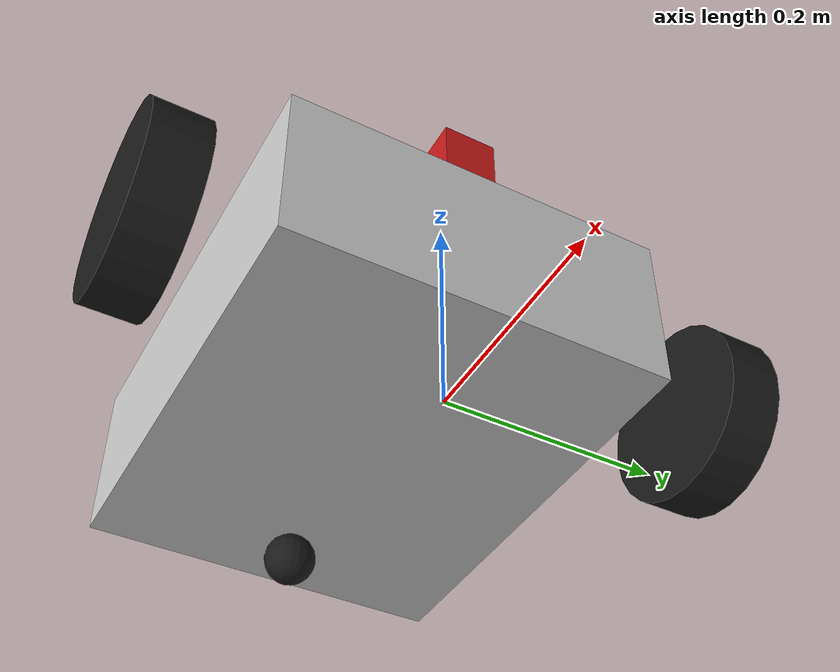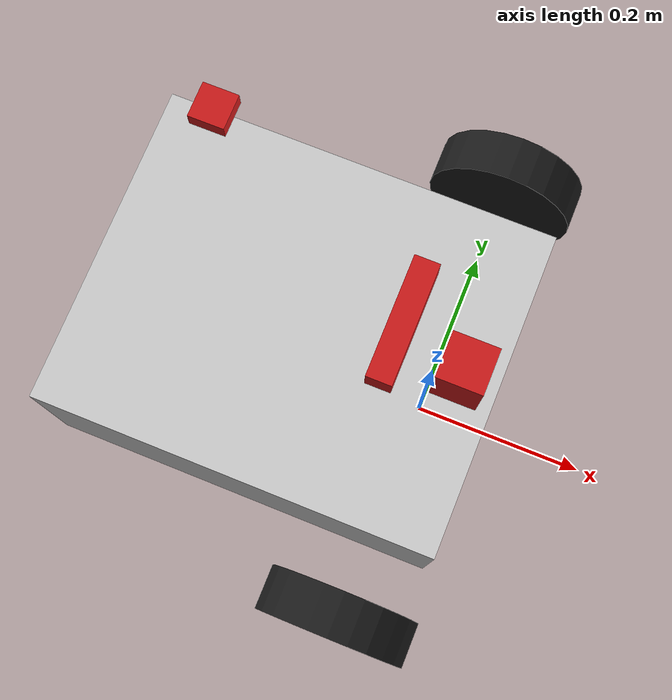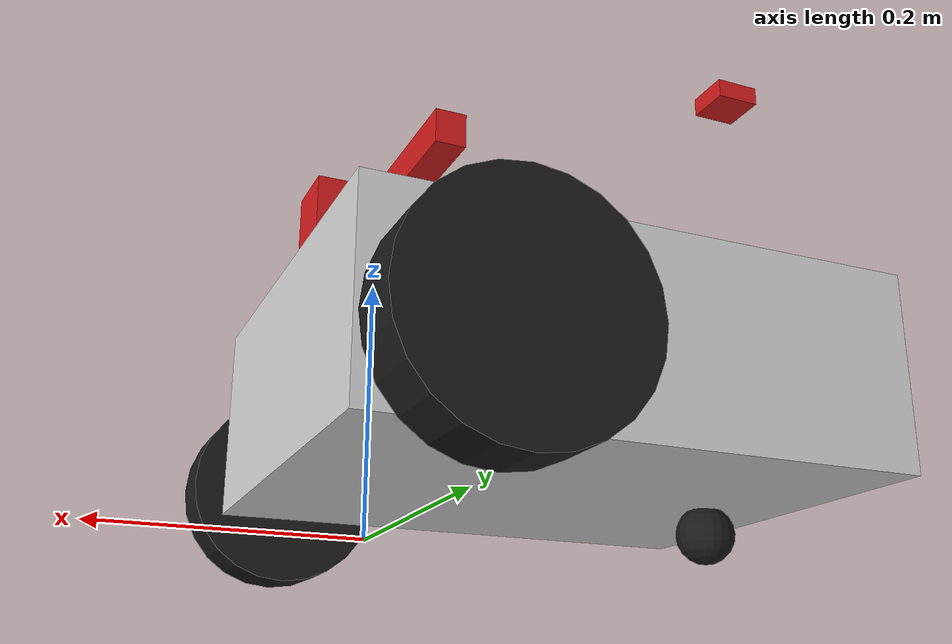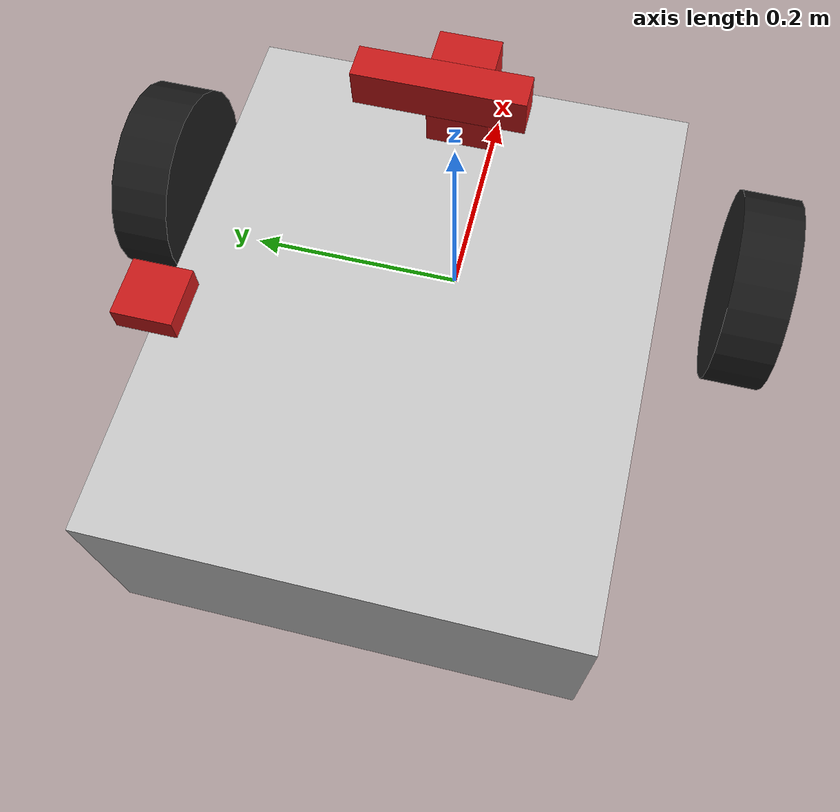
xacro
<?xml version="1.0"?>
<robot xmlns:xacro="http://www.ros.org/wiki/xacro" name="my_robot" >

  <!-- TODO : fix wheel inertia -->

  <!-- Constants for robot dimensions -->
  <xacro:property name="PI"          value="3.1415926535897931"/>

  <xacro:property name="base_mass"   value="2.0" />
  <xacro:property name="base_width"  value="0.36" />
  <xacro:property name="base_length" value="0.44" />
  <xacro:property name="base_height" value="0.16" />

  <xacro:property name="wheel_mass"  value="2.50" />
  <xacro:property name="wheel_len"   value="0.050" />
  <xacro:property name="wheel_radius" value="0.085" />
  <xacro:property name="wheel_x_offset" value="0.150" />
  <xacro:property name="wheel_y_offset" value="0.240" />
  <xacro:property name="wheel_z_offset" value="0.040" /> <!-- shaft Z offset referenced at the botton of the case -->

  <xacro:property name="caster_wheel_mass" value="0.1" />
  <xacro:property name="caster_wheel_radius" value="0.025" />
  <xacro:property name="caster_x_offset" value="-0.150" />
  <xacro:property name="caster_z_offset" value="-0.020" />

  <xacro:property name="laser_mass"   value="0.130" />
  <xacro:property name="laser_width"  value="0.05" />
  <xacro:property name="laser_length" value="0.05" />
  <xacro:property name="laser_height" value="0.07" />

  <xacro:property name="imu_mass"   value="0.020" />
  <xacro:property name="imu_width"  value="0.036" />
  <xacro:property name="imu_length" value="0.036" />
  <xacro:property name="imu_height" value="0.015" />

  <xacro:property name="camera_mass"   value="0.120" />
  <xacro:property name="camera_width"  value="0.124" />
  <xacro:property name="camera_length" value="0.026" />
  <xacro:property name="camera_height" value="0.029" />

  <xacro:macro name="cylinder_inertia_z" params="m r h">
    <inertia  ixx="${m*(3*r*r+h*h)/12}" ixy = "0" ixz = "0"
              iyy="${m*(3*r*r+h*h)/12}" iyz = "0"
              izz="${m*r*r/2}" />
  </xacro:macro>

  <xacro:macro name="cylinder_inertia_y" params="m r h">
    <inertia  ixx="${m*(3*r*r+h*h)/12}" ixy = "0" ixz = "0"
              iyy="${m*r*r/2}" iyz = "0"
              izz="${m*(3*r*r+h*h)/12}" />
  </xacro:macro>

	<material name="white">
   		<color rgba="0.8 0.8 0.8 1"/>
   	</material>

	<material name="black">
   		<color rgba="0.1 0.1 0.1 1"/>
   	</material>

	<material name="red">
   		<color rgba="0.8 0.1 0.1 1"/>
   	</material>

  <!-- ****************** ROBOT BASE FOOTPRINT (Z=0, center of rotation) ***************************  -->

  <link name="base_footprint"/>

  <joint name="base_joint" type="fixed">
    <parent link="base_footprint"/>
    <child link="base_link"/>
    <origin xyz="${-wheel_x_offset} 0 ${wheel_radius-wheel_z_offset+base_height/2.}" rpy="0 0 0"/>
  </joint>

  <!-- ********************** ROBOT CASE *********************************  -->

  <link name="base_link">
    <collision>
      <origin xyz="0 0 0" rpy="0 0 0"/>
      <geometry>
        <box size="${base_length} ${base_width} ${base_height}"/>
      </geometry>
    </collision>

    <visual>
      <origin xyz="0 0 0" rpy="0 0 0"/>
      <geometry>
        <box size="${base_length} ${base_width} ${base_height}"/>
      </geometry>
      <material name="white"/>
    </visual>

    <inertial>
      <origin xyz="0 0 0" rpy="0 0 0"/>
      <mass value="${base_mass}"/>
      <inertia
        ixx="${base_mass / 12.0 * (base_width*base_width + base_height*base_height)}" ixy="0.0" ixz="0.0"
        iyy="${base_mass / 12.0 * (base_height*base_height + base_length*base_length)}" iyz="0.0"
        izz="${base_mass / 12.0 * (base_width*base_width + base_length*base_length)}"/>
    </inertial>
	</link>

  <!-- ****************** ROBOT WHEELS ***************************  -->

    <joint name="left_wheel_joint" type="continuous">
      <parent link="base_link"/>
      <child link="left_wheel"/>
      <origin xyz="${wheel_x_offset} ${wheel_len/2+wheel_y_offset} ${wheel_z_offset-base_height/2.}" rpy="0 0 0"/>
      <axis xyz="0 1 0"/>
      <dynamics damping="0.2"/>
    </joint>

    <!-- left wheel Link -->
    <link name="left_wheel">
      <collision>
        <origin xyz="0 0 0" rpy="${PI/2} 0 0"/>
        <geometry>
          <cylinder length="${wheel_len}" radius="${wheel_radius}"/>
        </geometry>
      </collision>

      <visual>
        <origin xyz="0 0 0" rpy="${PI/2} 0 0"/>
        <geometry>
          <cylinder length="${wheel_len}" radius="${wheel_radius}"/>
        </geometry>
        <material name="black"/>
      </visual>

      <inertial>
        <origin xyz="0 0 0" rpy="0 0 0"/>
        <mass value="${wheel_mass}"/>
        <xacro:cylinder_inertia_y  m="${wheel_mass}" r="${wheel_radius}" h="${wheel_len}" />
      </inertial>
    </link>

    <joint name="right_wheel_joint" type="continuous">
      <parent link="base_link"/>
      <child link="right_wheel"/>
      <origin xyz="${wheel_x_offset} ${-wheel_len/2-wheel_y_offset} ${wheel_z_offset-base_height/2.}" rpy="0 0 0"/>
      <axis xyz="0 1 0"/>
      <dynamics damping="0.2"/>
    </joint>

    <!-- right wheel Link -->
    <link name="right_wheel">
      <collision>
        <origin xyz="0 0 0" rpy="${PI/2} 0 0"/>
        <geometry>
          <cylinder length="${wheel_len}" radius="${wheel_radius}"/>
        </geometry>
      </collision>

      <visual>
        <origin xyz="0 0 0" rpy="${PI/2} 0 0"/>
        <geometry>
          <cylinder length="${wheel_len}" radius="${wheel_radius}"/>
        </geometry>
        <material name="black"/>
      </visual>

      <inertial>
        <origin xyz="0 0 0" rpy="0 0 0"/>
        <mass value="${wheel_mass}"/>
        <xacro:cylinder_inertia_y  m="${wheel_mass}" r="${wheel_radius}" h="${wheel_len}" />
      </inertial>
    </link>

    <joint name="caster_wheel_joint" type="fixed">
      <parent link="base_link"/>
      <child link="caster_wheel"/>
      <origin xyz="${caster_x_offset} 0 ${caster_z_offset-base_height/2.}" rpy="0 0 0"/>
    </joint>

    <!-- caster wheel Link -->
    <link name="caster_wheel">
      <collision>
        <origin xyz="0 0 0" rpy="0 0 0"/>
        <geometry>
          <sphere radius="${caster_wheel_radius}"/>
        </geometry>
      </collision>

      <visual>
        <origin xyz="0 0 0" rpy="0 0 0"/>
        <geometry>
          <sphere radius="${caster_wheel_radius}"/>
        </geometry>
        <material name="black"/>
      </visual>

      <inertial>
        <origin xyz="0 0 0" rpy="0 0 0"/>
        <mass value="${caster_wheel_mass}"/>
        <inertia
          ixx="${caster_wheel_mass * 0.4 * (caster_wheel_radius * caster_wheel_radius)}" ixy="0.0" ixz="0.0"
          iyy="${caster_wheel_mass * 0.4 * (caster_wheel_radius * caster_wheel_radius)}" iyz="0.0"
          izz="${caster_wheel_mass * 0.4 * (caster_wheel_radius * caster_wheel_radius)}"/>
        </inertial>
      </link>

  <!-- ****************** LASER SENSOR ***************************  -->

    <!-- laser joint -->
    <joint name="laser_joint" type="fixed">
      <parent link="base_link"/>
      <child link="laser"/>
      <origin xyz="0.180 0.0 ${base_height/2.+laser_height/2.} " rpy="0 0 0"/>
    </joint>

    <!-- laser Link -->
    <link name="laser">
      <collision>
        <origin xyz="0 0 0" rpy="0 0 0"/>
        <geometry>
	        <box size="${laser_length} ${laser_width} ${laser_height} "/>
        </geometry>
      </collision>

      <visual>
        <origin xyz="0 0 0" rpy="0 0 0"/>
        <geometry>
	        <box size="${laser_length} ${laser_width} ${laser_height} "/>
        </geometry>
        <material name="red"/>
      </visual>

    <inertial>
      <origin xyz="0 0 0" rpy="0 0 0"/>
      <mass value="${laser_mass}"/>
      <inertia
        ixx="${laser_mass / 12.0 * (laser_width*laser_width + laser_height*laser_height)}" ixy="0.0" ixz="0.0"
        iyy="${laser_mass / 12.0 * (laser_height*laser_height + laser_length*laser_length)}" iyz="0.0"
        izz="${laser_mass / 12.0 * (laser_width*laser_width + laser_length*laser_length)}"/>
    </inertial>

      </link>

  <!-- ****************** IMU SENSOR ***************************  -->

  <!-- imu joint -->
  <joint name="imu_joint" type="fixed">
    <parent link="base_link"/>
    <child link="imu"/>
    <origin xyz="-0.120 0.110 ${base_height/2.+imu_height/2.+0.160} " rpy="0 0 0"/>
  </joint>

  <!-- imu Link -->
  <link name="imu">
    <collision>
      <origin xyz="0 0 0" rpy="0 0 0"/>
      <geometry>
        <box size="${imu_length} ${imu_width} ${imu_height} "/>
      </geometry>
    </collision>

    <visual>
      <origin xyz="0 0 0" rpy="0 0 0"/>
      <geometry>
        <box size="${imu_length} ${imu_width} ${imu_height} "/>
      </geometry>
      <material name="red"/>
    </visual>

    <inertial>
      <origin xyz="0 0 0" rpy="0 0 0"/>
      <mass value="${imu_mass}"/>
      <inertia
        ixx="${imu_mass / 12.0 * (imu_width*imu_width + imu_height*imu_height)}" ixy="0.0" ixz="0.0"
        iyy="${imu_mass / 12.0 * (imu_height*imu_height + imu_length*imu_length)}" iyz="0.0"
        izz="${imu_mass / 12.0 * (imu_width*imu_width + imu_length*imu_length)}"/>
    </inertial>
  </link>

  <!-- ****************** CAMERA SENSOR ***************************  -->

  <!-- camera joint -->
  <joint name="camera_joint" type="fixed">
    <parent link="base_link"/>
    <child link="camera"/>
    <origin xyz="0.110 0.0 ${base_height/2.+camera_height/2.+0.100} " rpy="0 0 0"/>
  </joint>

  <!-- camera Link -->
  <link name="camera">
    <collision>
      <origin xyz="0 0 0" rpy="0 0 0"/>
      <geometry>
        <box size="${camera_length} ${camera_width} ${camera_height} "/>
      </geometry>
    </collision>

    <visual>
      <origin xyz="0 0 0" rpy="0 0 0"/>
      <geometry>
        <box size="${camera_length} ${camera_width} ${camera_height} "/>
      </geometry>
      <material name="red"/>
    </visual>

    <inertial>
      <origin xyz="0 0 0" rpy="0 0 0"/>
      <mass value="${camera_mass}"/>
      <inertia
        ixx="${camera_mass / 12.0 * (camera_width*camera_width + camera_height*camera_height)}" ixy="0.0" ixz="0.0"
        iyy="${camera_mass / 12.0 * (camera_height*camera_height + camera_length*camera_length)}" iyz="0.0"
        izz="${camera_mass / 12.0 * (camera_width*camera_width + camera_length*camera_length)}"/>
    </inertial>
  </link>

  <joint name="camera_optical_joint" type="fixed">
    <origin xyz=" 0 0 0" rpy="${-PI/2} 0 ${-PI/2}"/>
    <parent link="camera"/>
    <child link="camera_optical"/>
  </joint>

  <link name="camera_optical"/>

</robot>
